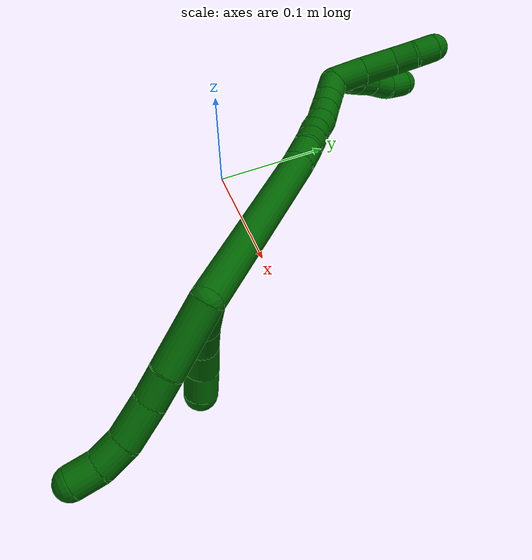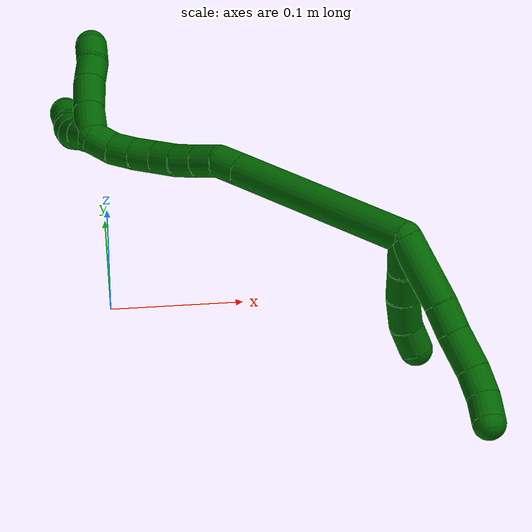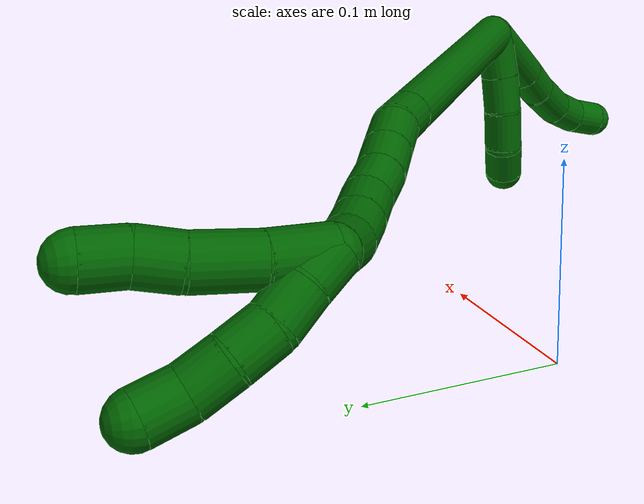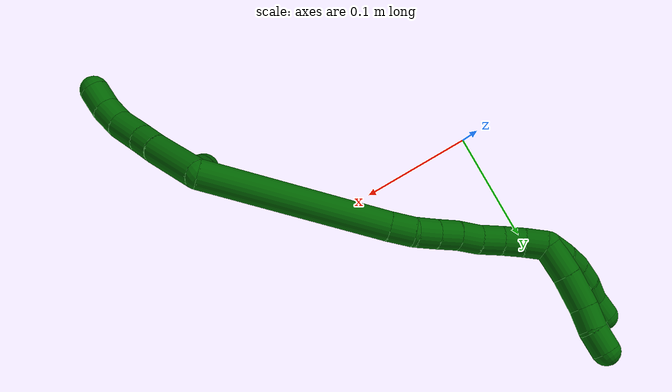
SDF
<sdf version="1.7">
 <world name="default">
  <model name="6">
   <static>0</static>
   <link name="6">
    <collision name="collision-cylinder-e_1_2_8">
     <pose>0.016891 0.004229 -0.020496 -2.93812 0.679052 -2.57887</pose>
     <geometry><cylinder><radius>0.0125</radius><length>0.053787</length></cylinder></geometry>
     <surface>
      <friction><ode><mu>1.16</mu><mu2>1.16</mu2><slip1>0</slip1><slip2>0</slip2></ode></friction>
      <contact><ode><kp>1e+06</kp><kd>1</kd><max_vel>0</max_vel><min_depth>0.001</min_depth></ode></contact>
     </surface>
    </collision>
    <visual name="visual-cylinder-e_1_2_8">
     <pose>0.016891 0.004229 -0.020496 -2.93812 0.679052 -2.57887</pose>
     <geometry><cylinder><radius>0.0125</radius><length>0.053787</length></cylinder></geometry>
     <material><ambient>0 0.392157 0.003922 1</ambient></material>
    </visual>
    <collision name="collision-cylinder-e_2_8_9">
     <pose>0.040942 0.011165 -0.049287 -2.82608 0.687177 -2.30485</pose>
     <geometry><cylinder><radius>0.0125</radius><length>0.022574</length></cylinder></geometry>
     <surface>
      <friction><ode><mu>1.16</mu><mu2>1.16</mu2><slip1>0</slip1><slip2>0</slip2></ode></friction>
      <contact><ode><kp>1e+06</kp><kd>1</kd><max_vel>0</max_vel><min_depth>0.001</min_depth></ode></contact>
     </surface>
    </collision>
    <visual name="visual-cylinder-e_2_8_9">
     <pose>0.040942 0.011165 -0.049287 -2.82608 0.687177 -2.30485</pose>
     <geometry><cylinder><radius>0.0125</radius><length>0.022574</length></cylinder></geometry>
     <material><ambient>0 0.392157 0.003922 1</ambient></material>
    </visual>
    <collision name="collision-cylinder-e_3_9_10">
     <pose>0.057041 0.01613 -0.069877 -2.96001 0.620805 -2.58851</pose>
     <geometry><cylinder><radius>0.0125</radius><length>0.030736</length></cylinder></geometry>
     <surface>
      <friction><ode><mu>1.16</mu><mu2>1.16</mu2><slip1>0</slip1><slip2>0</slip2></ode></friction>
      <contact><ode><kp>1e+06</kp><kd>1</kd><max_vel>0</max_vel><min_depth>0.001</min_depth></ode></contact>
     </surface>
    </collision>
    <visual name="visual-cylinder-e_3_9_10">
     <pose>0.057041 0.01613 -0.069877 -2.96001 0.620805 -2.58851</pose>
     <geometry><cylinder><radius>0.0125</radius><length>0.030736</length></cylinder></geometry>
     <material><ambient>0 0.392157 0.003922 1</ambient></material>
    </visual>
    <collision name="collision-cylinder-e_4_10_11">
     <pose>0.070167 0.020225 -0.092126 -2.95907 0.39216 -2.27812</pose>
     <geometry><cylinder><radius>0.0125</radius><length>0.021906</length></cylinder></geometry>
     <surface>
      <friction><ode><mu>1.16</mu><mu2>1.16</mu2><slip1>0</slip1><slip2>0</slip2></ode></friction>
      <contact><ode><kp>1e+06</kp><kd>1</kd><max_vel>0</max_vel><min_depth>0.001</min_depth></ode></contact>
     </surface>
    </collision>
    <visual name="visual-cylinder-e_4_10_11">
     <pose>0.070167 0.020225 -0.092126 -2.95907 0.39216 -2.27812</pose>
     <geometry><cylinder><radius>0.0125</radius><length>0.021906</length></cylinder></geometry>
     <material><ambient>0 0.392157 0.003922 1</ambient></material>
    </visual>
    <collision name="collision-cylinder-e_5_11_6">
     <pose>0.075637 0.023961 -0.112323 -2.95828 0.122615 -1.17765</pose>
     <geometry><cylinder><radius>0.0125</radius><length>0.020995</length></cylinder></geometry>
     <surface>
      <friction><ode><mu>1.16</mu><mu2>1.16</mu2><slip1>0</slip1><slip2>0</slip2></ode></friction>
      <contact><ode><kp>1e+06</kp><kd>1</kd><max_vel>0</max_vel><min_depth>0.001</min_depth></ode></contact>
     </surface>
    </collision>
    <visual name="visual-cylinder-e_5_11_6">
     <pose>0.075637 0.023961 -0.112323 -2.95828 0.122615 -1.17765</pose>
     <geometry><cylinder><radius>0.0125</radius><length>0.020995</length></cylinder></geometry>
     <material><ambient>0 0.392157 0.003922 1</ambient></material>
    </visual>
    <collision name="collision-cylinder-e_1_2_12">
     <pose>0.00959 0.009936 -0.002819 -1.84724 0.748324 -0.958338</pose>
     <geometry><cylinder><radius>0.0125</radius><length>0.028187</length></cylinder></geometry>
     <surface>
      <friction><ode><mu>1.16</mu><mu2>1.16</mu2><slip1>0</slip1><slip2>0</slip2></ode></friction>
      <contact><ode><kp>1e+06</kp><kd>1</kd><max_vel>0</max_vel><min_depth>0.001</min_depth></ode></contact>
     </surface>
    </collision>
    <visual name="visual-cylinder-e_1_2_12">
     <pose>0.00959 0.009936 -0.002819 -1.84724 0.748324 -0.958338</pose>
     <geometry><cylinder><radius>0.0125</radius><length>0.028187</length></cylinder></geometry>
     <material><ambient>0 0.392157 0.003922 1</ambient></material>
    </visual>
    <collision name="collision-cylinder-e_2_12_13">
     <pose>0.027411 0.028407 -0.006894 -1.71695 0.761974 -0.868606</pose>
     <geometry><cylinder><radius>0.0125</radius><length>0.023849</length></cylinder></geometry>
     <surface>
      <friction><ode><mu>1.16</mu><mu2>1.16</mu2><slip1>0</slip1><slip2>0</slip2></ode></friction>
      <contact><ode><kp>1e+06</kp><kd>1</kd><max_vel>0</max_vel><min_depth>0.001</min_depth></ode></contact>
     </surface>
    </collision>
    <visual name="visual-cylinder-e_2_12_13">
     <pose>0.027411 0.028407 -0.006894 -1.71695 0.761974 -0.868606</pose>
     <geometry><cylinder><radius>0.0125</radius><length>0.023849</length></cylinder></geometry>
     <material><ambient>0 0.392157 0.003922 1</ambient></material>
    </visual>
    <collision name="collision-cylinder-e_3_13_14">
     <pose>0.045827 0.044968 -0.009771 -1.77005 0.893585 -1.05942</pose>
     <geometry><cylinder><radius>0.0125</radius><length>0.026134</length></cylinder></geometry>
     <surface>
      <friction><ode><mu>1.16</mu><mu2>1.16</mu2><slip1>0</slip1><slip2>0</slip2></ode></friction>
      <contact><ode><kp>1e+06</kp><kd>1</kd><max_vel>0</max_vel><min_depth>0.001</min_depth></ode></contact>
     </surface>
    </collision>
    <visual name="visual-cylinder-e_3_13_14">
     <pose>0.045827 0.044968 -0.009771 -1.77005 0.893585 -1.05942</pose>
     <geometry><cylinder><radius>0.0125</radius><length>0.026134</length></cylinder></geometry>
     <material><ambient>0 0.392157 0.003922 1</ambient></material>
    </visual>
    <collision name="collision-cylinder-e_4_14_5">
     <pose>0.065538 0.05735 -0.014456 -2.18381 1.06115 -1.6927</pose>
     <geometry><cylinder><radius>0.0125</radius><length>0.02183</length></cylinder></geometry>
     <surface>
      <friction><ode><mu>1.16</mu><mu2>1.16</mu2><slip1>0</slip1><slip2>0</slip2></ode></friction>
      <contact><ode><kp>1e+06</kp><kd>1</kd><max_vel>0</max_vel><min_depth>0.001</min_depth></ode></contact>
     </surface>
    </collision>
    <visual name="visual-cylinder-e_4_14_5">
     <pose>0.065538 0.05735 -0.014456 -2.18381 1.06115 -1.6927</pose>
     <geometry><cylinder><radius>0.0125</radius><length>0.02183</length></cylinder></geometry>
     <material><ambient>0 0.392157 0.003922 1</ambient></material>
    </visual>
    <collision name="collision-cylinder-e_1_2_15">
     <pose>-0.022845 0.043762 0.061987 -0.614737 -0.292441 0.093428</pose>
     <geometry><cylinder><radius>0.0125</radius><length>0.158485</length></cylinder></geometry>
     <surface>
      <friction><ode><mu>1.16</mu><mu2>1.16</mu2><slip1>0</slip1><slip2>0</slip2></ode></friction>
      <contact><ode><kp>1e+06</kp><kd>1</kd><max_vel>0</max_vel><min_depth>0.001</min_depth></ode></contact>
     </surface>
    </collision>
    <visual name="visual-cylinder-e_1_2_15">
     <pose>-0.022845 0.043762 0.061987 -0.614737 -0.292441 0.093428</pose>
     <geometry><cylinder><radius>0.0125</radius><length>0.158485</length></cylinder></geometry>
     <material><ambient>0 0.392157 0.003922 1</ambient></material>
    </visual>
    <collision name="collision-cylinder-e_2_15_16">
     <pose>-0.049266 0.093423 0.132072 -0.629537 -0.342835 0.112612</pose>
     <geometry><cylinder><radius>0.0125</radius><length>0.021275</length></cylinder></geometry>
     <surface>
      <friction><ode><mu>1.16</mu><mu2>1.16</mu2><slip1>0</slip1><slip2>0</slip2></ode></friction>
      <contact><ode><kp>1e+06</kp><kd>1</kd><max_vel>0</max_vel><min_depth>0.001</min_depth></ode></contact>
     </surface>
    </collision>
    <visual name="visual-cylinder-e_2_15_16">
     <pose>-0.049266 0.093423 0.132072 -0.629537 -0.342835 0.112612</pose>
     <geometry><cylinder><radius>0.0125</radius><length>0.021275</length></cylinder></geometry>
     <material><ambient>0 0.392157 0.003922 1</ambient></material>
    </visual>
    <collision name="collision-cylinder-e_3_16_17">
     <pose>-0.054464 0.107145 0.146379 -0.899962 -0.161047 0.07792</pose>
     <geometry><cylinder><radius>0.0125</radius><length>0.020238</length></cylinder></geometry>
     <surface>
      <friction><ode><mu>1.16</mu><mu2>1.16</mu2><slip1>0</slip1><slip2>0</slip2></ode></friction>
      <contact><ode><kp>1e+06</kp><kd>1</kd><max_vel>0</max_vel><min_depth>0.001</min_depth></ode></contact>
     </surface>
    </collision>
    <visual name="visual-cylinder-e_3_16_17">
     <pose>-0.054464 0.107145 0.146379 -0.899962 -0.161047 0.07792</pose>
     <geometry><cylinder><radius>0.0125</radius><length>0.020238</length></cylinder></geometry>
     <material><ambient>0 0.392157 0.003922 1</ambient></material>
    </visual>
    <collision name="collision-cylinder-e_4_17_18">
     <pose>-0.058062 0.122679 0.158642 -0.905062 -0.198793 0.096893</pose>
     <geometry><cylinder><radius>0.0125</radius><length>0.02</length></cylinder></geometry>
     <surface>
      <friction><ode><mu>1.16</mu><mu2>1.16</mu2><slip1>0</slip1><slip2>0</slip2></ode></friction>
      <contact><ode><kp>1e+06</kp><kd>1</kd><max_vel>0</max_vel><min_depth>0.001</min_depth></ode></contact>
     </surface>
    </collision>
    <visual name="visual-cylinder-e_4_17_18">
     <pose>-0.058062 0.122679 0.158642 -0.905062 -0.198793 0.096893</pose>
     <geometry><cylinder><radius>0.0125</radius><length>0.02</length></cylinder></geometry>
     <material><ambient>0 0.392157 0.003922 1</ambient></material>
    </visual>
    <collision name="collision-cylinder-e_5_18_19">
     <pose>-0.061911 0.137295 0.171683 -0.779683 -0.188517 0.077647</pose>
     <geometry><cylinder><radius>0.0125</radius><length>0.020001</length></cylinder></geometry>
     <surface>
      <friction><ode><mu>1.16</mu><mu2>1.16</mu2><slip1>0</slip1><slip2>0</slip2></ode></friction>
      <contact><ode><kp>1e+06</kp><kd>1</kd><max_vel>0</max_vel><min_depth>0.001</min_depth></ode></contact>
     </surface>
    </collision>
    <visual name="visual-cylinder-e_5_18_19">
     <pose>-0.061911 0.137295 0.171683 -0.779683 -0.188517 0.077647</pose>
     <geometry><cylinder><radius>0.0125</radius><length>0.020001</length></cylinder></geometry>
     <material><ambient>0 0.392157 0.003922 1</ambient></material>
    </visual>
    <collision name="collision-cylinder-e_6_19_20">
     <pose>-0.067141 0.151225 0.184946 -0.841479 -0.342243 0.154345</pose>
     <geometry><cylinder><radius>0.0125</radius><length>0.02</length></cylinder></geometry>
     <surface>
      <friction><ode><mu>1.16</mu><mu2>1.16</mu2><slip1>0</slip1><slip2>0</slip2></ode></friction>
      <contact><ode><kp>1e+06</kp><kd>1</kd><max_vel>0</max_vel><min_depth>0.001</min_depth></ode></contact>
     </surface>
    </collision>
    <visual name="visual-cylinder-e_6_19_20">
     <pose>-0.067141 0.151225 0.184946 -0.841479 -0.342243 0.154345</pose>
     <geometry><cylinder><radius>0.0125</radius><length>0.02</length></cylinder></geometry>
     <material><ambient>0 0.392157 0.003922 1</ambient></material>
    </visual>
    <collision name="collision-cylinder-e_7_20_21">
     <pose>-0.074183 0.164789 0.197829 -0.780366 -0.37752 0.156811</pose>
     <geometry><cylinder><radius>0.0125</radius><length>0.02</length></cylinder></geometry>
     <surface>
      <friction><ode><mu>1.16</mu><mu2>1.16</mu2><slip1>0</slip1><slip2>0</slip2></ode></friction>
      <contact><ode><kp>1e+06</kp><kd>1</kd><max_vel>0</max_vel><min_depth>0.001</min_depth></ode></contact>
     </surface>
    </collision>
    <visual name="visual-cylinder-e_7_20_21">
     <pose>-0.074183 0.164789 0.197829 -0.780366 -0.37752 0.156811</pose>
     <geometry><cylinder><radius>0.0125</radius><length>0.02</length></cylinder></geometry>
     <material><ambient>0 0.392157 0.003922 1</ambient></material>
    </visual>
    <collision name="collision-cylinder-e_8_21_1">
     <pose>-0.083451 0.175784 0.211436 -0.566712 -0.592126 0.177178</pose>
     <geometry><cylinder><radius>0.0125</radius><length>0.02</length></cylinder></geometry>
     <surface>
      <friction><ode><mu>1.16</mu><mu2>1.16</mu2><slip1>0</slip1><slip2>0</slip2></ode></friction>
      <contact><ode><kp>1e+06</kp><kd>1</kd><max_vel>0</max_vel><min_depth>0.001</min_depth></ode></contact>
     </surface>
    </collision>
    <visual name="visual-cylinder-e_8_21_1">
     <pose>-0.083451 0.175784 0.211436 -0.566712 -0.592126 0.177178</pose>
     <geometry><cylinder><radius>0.0125</radius><length>0.02</length></cylinder></geometry>
     <material><ambient>0 0.392157 0.003922 1</ambient></material>
    </visual>
    <collision name="collision-cylinder-e_1_1_22">
     <pose>-0.087521 0.18575 0.226643 -0.5914 0.151653 -0.046279</pose>
     <geometry><cylinder><radius>0.0125</radius><length>0.02</length></cylinder></geometry>
     <surface>
      <friction><ode><mu>1.16</mu><mu2>1.16</mu2><slip1>0</slip1><slip2>0</slip2></ode></friction>
      <contact><ode><kp>1e+06</kp><kd>1</kd><max_vel>0</max_vel><min_depth>0.001</min_depth></ode></contact>
     </surface>
    </collision>
    <visual name="visual-cylinder-e_1_1_22">
     <pose>-0.087521 0.18575 0.226643 -0.5914 0.151653 -0.046279</pose>
     <geometry><cylinder><radius>0.0125</radius><length>0.02</length></cylinder></geometry>
     <material><ambient>0 0.392157 0.003922 1</ambient></material>
    </visual>
    <collision name="collision-cylinder-e_2_22_23">
     <pose>-0.083097 0.196964 0.242529 -0.638767 0.295678 -0.098421</pose>
     <geometry><cylinder><radius>0.0125</radius><length>0.02</length></cylinder></geometry>
     <surface>
      <friction><ode><mu>1.16</mu><mu2>1.16</mu2><slip1>0</slip1><slip2>0</slip2></ode></friction>
      <contact><ode><kp>1e+06</kp><kd>1</kd><max_vel>0</max_vel><min_depth>0.001</min_depth></ode></contact>
     </surface>
    </collision>
    <visual name="visual-cylinder-e_2_22_23">
     <pose>-0.083097 0.196964 0.242529 -0.638767 0.295678 -0.098421</pose>
     <geometry><cylinder><radius>0.0125</radius><length>0.02</length></cylinder></geometry>
     <material><ambient>0 0.392157 0.003922 1</ambient></material>
    </visual>
    <collision name="collision-cylinder-e_3_23_24">
     <pose>-0.076876 0.206125 0.25899 -0.375077 0.337063 -0.064554</pose>
     <geometry><cylinder><radius>0.0125</radius><length>0.02</length></cylinder></geometry>
     <surface>
      <friction><ode><mu>1.16</mu><mu2>1.16</mu2><slip1>0</slip1><slip2>0</slip2></ode></friction>
      <contact><ode><kp>1e+06</kp><kd>1</kd><max_vel>0</max_vel><min_depth>0.001</min_depth></ode></contact>
     </surface>
    </collision>
    <visual name="visual-cylinder-e_3_23_24">
     <pose>-0.076876 0.206125 0.25899 -0.375077 0.337063 -0.064554</pose>
     <geometry><cylinder><radius>0.0125</radius><length>0.02</length></cylinder></geometry>
     <material><ambient>0 0.392157 0.003922 1</ambient></material>
    </visual>
    <collision name="collision-cylinder-e_4_24_25">
     <pose>-0.068882 0.212276 0.276184 -0.309868 0.487779 -0.077692</pose>
     <geometry><cylinder><radius>0.0125</radius><length>0.02</length></cylinder></geometry>
     <surface>
      <friction><ode><mu>1.16</mu><mu2>1.16</mu2><slip1>0</slip1><slip2>0</slip2></ode></friction>
      <contact><ode><kp>1e+06</kp><kd>1</kd><max_vel>0</max_vel><min_depth>0.001</min_depth></ode></contact>
     </surface>
    </collision>
    <visual name="visual-cylinder-e_4_24_25">
     <pose>-0.068882 0.212276 0.276184 -0.309868 0.487779 -0.077692</pose>
     <geometry><cylinder><radius>0.0125</radius><length>0.02</length></cylinder></geometry>
     <material><ambient>0 0.392157 0.003922 1</ambient></material>
    </visual>
    <collision name="collision-cylinder-e_5_25_4">
     <pose>-0.062398 0.216861 0.294251 -0.193463 0.180688 -0.01758</pose>
     <geometry><cylinder><radius>0.0125</radius><length>0.02</length></cylinder></geometry>
     <surface>
      <friction><ode><mu>1.16</mu><mu2>1.16</mu2><slip1>0</slip1><slip2>0</slip2></ode></friction>
      <contact><ode><kp>1e+06</kp><kd>1</kd><max_vel>0</max_vel><min_depth>0.001</min_depth></ode></contact>
     </surface>
    </collision>
    <visual name="visual-cylinder-e_5_25_4">
     <pose>-0.062398 0.216861 0.294251 -0.193463 0.180688 -0.01758</pose>
     <geometry><cylinder><radius>0.0125</radius><length>0.02</length></cylinder></geometry>
     <material><ambient>0 0.392157 0.003922 1</ambient></material>
    </visual>
    <collision name="collision-cylinder-e_1_1_26">
     <pose>-0.088508 0.179125 0.233084 0.075906 0.03562 0.001353</pose>
     <geometry><cylinder><radius>0.0125</radius><length>0.029398</length></cylinder></geometry>
     <surface>
      <friction><ode><mu>1.16</mu><mu2>1.16</mu2><slip1>0</slip1><slip2>0</slip2></ode></friction>
      <contact><ode><kp>1e+06</kp><kd>1</kd><max_vel>0</max_vel><min_depth>0.001</min_depth></ode></contact>
     </surface>
    </collision>
    <visual name="visual-cylinder-e_1_1_26">
     <pose>-0.088508 0.179125 0.233084 0.075906 0.03562 0.001353</pose>
     <geometry><cylinder><radius>0.0125</radius><length>0.029398</length></cylinder></geometry>
     <material><ambient>0 0.392157 0.003922 1</ambient></material>
    </visual>
    <collision name="collision-cylinder-e_2_26_27">
     <pose>-0.086947 0.175194 0.262633 0.186779 0.068348 0.006404</pose>
     <geometry><cylinder><radius>0.0125</radius><length>0.030403</length></cylinder></geometry>
     <surface>
      <friction><ode><mu>1.16</mu><mu2>1.16</mu2><slip1>0</slip1><slip2>0</slip2></ode></friction>
      <contact><ode><kp>1e+06</kp><kd>1</kd><max_vel>0</max_vel><min_depth>0.001</min_depth></ode></contact>
     </surface>
    </collision>
    <visual name="visual-cylinder-e_2_26_27">
     <pose>-0.086947 0.175194 0.262633 0.186779 0.068348 0.006404</pose>
     <geometry><cylinder><radius>0.0125</radius><length>0.030403</length></cylinder></geometry>
     <material><ambient>0 0.392157 0.003922 1</ambient></material>
    </visual>
    <collision name="collision-cylinder-e_3_27_28">
     <pose>-0.085349 0.168874 0.286931 0.357002 0.055722 0.010056</pose>
     <geometry><cylinder><radius>0.0125</radius><length>0.020086</length></cylinder></geometry>
     <surface>
      <friction><ode><mu>1.16</mu><mu2>1.16</mu2><slip1>0</slip1><slip2>0</slip2></ode></friction>
      <contact><ode><kp>1e+06</kp><kd>1</kd><max_vel>0</max_vel><min_depth>0.001</min_depth></ode></contact>
     </surface>
    </collision>
    <visual name="visual-cylinder-e_3_27_28">
     <pose>-0.085349 0.168874 0.286931 0.357002 0.055722 0.010056</pose>
     <geometry><cylinder><radius>0.0125</radius><length>0.020086</length></cylinder></geometry>
     <material><ambient>0 0.392157 0.003922 1</ambient></material>
    </visual>
    <collision name="collision-cylinder-e_4_28_3">
     <pose>-0.084381 0.164224 0.306308 0.114285 0.0407 0.002329</pose>
     <geometry><cylinder><radius>0.0125</radius><length>0.020113</length></cylinder></geometry>
     <surface>
      <friction><ode><mu>1.16</mu><mu2>1.16</mu2><slip1>0</slip1><slip2>0</slip2></ode></friction>
      <contact><ode><kp>1e+06</kp><kd>1</kd><max_vel>0</max_vel><min_depth>0.001</min_depth></ode></contact>
     </surface>
    </collision>
    <visual name="visual-cylinder-e_4_28_3">
     <pose>-0.084381 0.164224 0.306308 0.114285 0.0407 0.002329</pose>
     <geometry><cylinder><radius>0.0125</radius><length>0.020113</length></cylinder></geometry>
     <material><ambient>0 0.392157 0.003922 1</ambient></material>
    </visual>
    <collision name="collision-sphere-3">
     <pose>-0.083972 0.163078 0.316291 0 -0 0</pose>
     <geometry><sphere><radius>0.0125</radius></sphere></geometry>
     <surface>
      <friction><ode><mu>1.16</mu><mu2>1.16</mu2><slip1>0</slip1><slip2>0</slip2></ode></friction>
      <contact><ode><kp>1e+06</kp><kd>1</kd><max_vel>0</max_vel><min_depth>0.001</min_depth></ode></contact>
     </surface>
    </collision>
    <visual name="visual-sphere-3">
     <pose>-0.083972 0.163078 0.316291 0 -0 0</pose>
     <geometry><sphere><radius>0.0125</radius></sphere></geometry>
     <material><ambient>0 0.392157 0.003922 1</ambient></material>
    </visual>
    <collision name="collision-sphere-28">
     <pose>-0.08479 0.16537 0.296326 0 -0 0</pose>
     <geometry><sphere><radius>0.0125</radius></sphere></geometry>
     <surface>
      <friction><ode><mu>1.16</mu><mu2>1.16</mu2><slip1>0</slip1><slip2>0</slip2></ode></friction>
      <contact><ode><kp>1e+06</kp><kd>1</kd><max_vel>0</max_vel><min_depth>0.001</min_depth></ode></contact>
     </surface>
    </collision>
    <visual name="visual-sphere-28">
     <pose>-0.08479 0.16537 0.296326 0 -0 0</pose>
     <geometry><sphere><radius>0.0125</radius></sphere></geometry>
     <material><ambient>0 0.392157 0.003922 1</ambient></material>
    </visual>
    <collision name="collision-sphere-27">
     <pose>-0.085909 0.172378 0.277535 0 -0 0</pose>
     <geometry><sphere><radius>0.0125</radius></sphere></geometry>
     <surface>
      <friction><ode><mu>1.16</mu><mu2>1.16</mu2><slip1>0</slip1><slip2>0</slip2></ode></friction>
      <contact><ode><kp>1e+06</kp><kd>1</kd><max_vel>0</max_vel><min_depth>0.001</min_depth></ode></contact>
     </surface>
    </collision>
    <visual name="visual-sphere-27">
     <pose>-0.085909 0.172378 0.277535 0 -0 0</pose>
     <geometry><sphere><radius>0.0125</radius></sphere></geometry>
     <material><ambient>0 0.392157 0.003922 1</ambient></material>
    </visual>
    <collision name="collision-sphere-26">
     <pose>-0.087985 0.178011 0.247731 0 -0 0</pose>
     <geometry><sphere><radius>0.0125</radius></sphere></geometry>
     <surface>
      <friction><ode><mu>1.16</mu><mu2>1.16</mu2><slip1>0</slip1><slip2>0</slip2></ode></friction>
      <contact><ode><kp>1e+06</kp><kd>1</kd><max_vel>0</max_vel><min_depth>0.001</min_depth></ode></contact>
     </surface>
    </collision>
    <visual name="visual-sphere-26">
     <pose>-0.087985 0.178011 0.247731 0 -0 0</pose>
     <geometry><sphere><radius>0.0125</radius></sphere></geometry>
     <material><ambient>0 0.392157 0.003922 1</ambient></material>
    </visual>
    <collision name="collision-sphere-4">
     <pose>-0.060601 0.218752 0.303905 0 -0 0</pose>
     <geometry><sphere><radius>0.0125</radius></sphere></geometry>
     <surface>
      <friction><ode><mu>1.16</mu><mu2>1.16</mu2><slip1>0</slip1><slip2>0</slip2></ode></friction>
      <contact><ode><kp>1e+06</kp><kd>1</kd><max_vel>0</max_vel><min_depth>0.001</min_depth></ode></contact>
     </surface>
    </collision>
    <visual name="visual-sphere-4">
     <pose>-0.060601 0.218752 0.303905 0 -0 0</pose>
     <geometry><sphere><radius>0.0125</radius></sphere></geometry>
     <material><ambient>0 0.392157 0.003922 1</ambient></material>
    </visual>
    <collision name="collision-sphere-25">
     <pose>-0.064195 0.21497 0.284597 0 -0 0</pose>
     <geometry><sphere><radius>0.0125</radius></sphere></geometry>
     <surface>
      <friction><ode><mu>1.16</mu><mu2>1.16</mu2><slip1>0</slip1><slip2>0</slip2></ode></friction>
      <contact><ode><kp>1e+06</kp><kd>1</kd><max_vel>0</max_vel><min_depth>0.001</min_depth></ode></contact>
     </surface>
    </collision>
    <visual name="visual-sphere-25">
     <pose>-0.064195 0.21497 0.284597 0 -0 0</pose>
     <geometry><sphere><radius>0.0125</radius></sphere></geometry>
     <material><ambient>0 0.392157 0.003922 1</ambient></material>
    </visual>
    <collision name="collision-sphere-24">
     <pose>-0.073568 0.209582 0.267771 0 -0 0</pose>
     <geometry><sphere><radius>0.0125</radius></sphere></geometry>
     <surface>
      <friction><ode><mu>1.16</mu><mu2>1.16</mu2><slip1>0</slip1><slip2>0</slip2></ode></friction>
      <contact><ode><kp>1e+06</kp><kd>1</kd><max_vel>0</max_vel><min_depth>0.001</min_depth></ode></contact>
     </surface>
    </collision>
    <visual name="visual-sphere-24">
     <pose>-0.073568 0.209582 0.267771 0 -0 0</pose>
     <geometry><sphere><radius>0.0125</radius></sphere></geometry>
     <material><ambient>0 0.392157 0.003922 1</ambient></material>
    </visual>
    <collision name="collision-sphere-23">
     <pose>-0.080183 0.202668 0.250209 0 -0 0</pose>
     <geometry><sphere><radius>0.0125</radius></sphere></geometry>
     <surface>
      <friction><ode><mu>1.16</mu><mu2>1.16</mu2><slip1>0</slip1><slip2>0</slip2></ode></friction>
      <contact><ode><kp>1e+06</kp><kd>1</kd><max_vel>0</max_vel><min_depth>0.001</min_depth></ode></contact>
     </surface>
    </collision>
    <visual name="visual-sphere-23">
     <pose>-0.080183 0.202668 0.250209 0 -0 0</pose>
     <geometry><sphere><radius>0.0125</radius></sphere></geometry>
     <material><ambient>0 0.392157 0.003922 1</ambient></material>
    </visual>
    <collision name="collision-sphere-22">
     <pose>-0.086011 0.191261 0.234849 0 -0 0</pose>
     <geometry><sphere><radius>0.0125</radius></sphere></geometry>
     <surface>
      <friction><ode><mu>1.16</mu><mu2>1.16</mu2><slip1>0</slip1><slip2>0</slip2></ode></friction>
      <contact><ode><kp>1e+06</kp><kd>1</kd><max_vel>0</max_vel><min_depth>0.001</min_depth></ode></contact>
     </surface>
    </collision>
    <visual name="visual-sphere-22">
     <pose>-0.086011 0.191261 0.234849 0 -0 0</pose>
     <geometry><sphere><radius>0.0125</radius></sphere></geometry>
     <material><ambient>0 0.392157 0.003922 1</ambient></material>
    </visual>
    <collision name="collision-sphere-1">
     <pose>-0.089032 0.180239 0.218436 0 -0 0</pose>
     <geometry><sphere><radius>0.0125</radius></sphere></geometry>
     <surface>
      <friction><ode><mu>1.16</mu><mu2>1.16</mu2><slip1>0</slip1><slip2>0</slip2></ode></friction>
      <contact><ode><kp>1e+06</kp><kd>1</kd><max_vel>0</max_vel><min_depth>0.001</min_depth></ode></contact>
     </surface>
    </collision>
    <visual name="visual-sphere-1">
     <pose>-0.089032 0.180239 0.218436 0 -0 0</pose>
     <geometry><sphere><radius>0.0125</radius></sphere></geometry>
     <material><ambient>0 0.392157 0.003922 1</ambient></material>
    </visual>
    <collision name="collision-sphere-21">
     <pose>-0.077869 0.171329 0.204435 0 -0 0</pose>
     <geometry><sphere><radius>0.0125</radius></sphere></geometry>
     <surface>
      <friction><ode><mu>1.16</mu><mu2>1.16</mu2><slip1>0</slip1><slip2>0</slip2></ode></friction>
      <contact><ode><kp>1e+06</kp><kd>1</kd><max_vel>0</max_vel><min_depth>0.001</min_depth></ode></contact>
     </surface>
    </collision>
    <visual name="visual-sphere-21">
     <pose>-0.077869 0.171329 0.204435 0 -0 0</pose>
     <geometry><sphere><radius>0.0125</radius></sphere></geometry>
     <material><ambient>0 0.392157 0.003922 1</ambient></material>
    </visual>
    <collision name="collision-sphere-6">
     <pose>0.076921 0.02586 -0.122568 0 -0 0</pose>
     <geometry><sphere><radius>0.0125</radius></sphere></geometry>
     <surface>
      <friction><ode><mu>1.16</mu><mu2>1.16</mu2><slip1>0</slip1><slip2>0</slip2></ode></friction>
      <contact><ode><kp>1e+06</kp><kd>1</kd><max_vel>0</max_vel><min_depth>0.001</min_depth></ode></contact>
     </surface>
    </collision>
    <visual name="visual-sphere-6">
     <pose>0.076921 0.02586 -0.122568 0 -0 0</pose>
     <geometry><sphere><radius>0.0125</radius></sphere></geometry>
     <material><ambient>0 0.392157 0.003922 1</ambient></material>
    </visual>
    <collision name="collision-sphere-11">
     <pose>0.074353 0.022062 -0.102079 0 -0 0</pose>
     <geometry><sphere><radius>0.0125</radius></sphere></geometry>
     <surface>
      <friction><ode><mu>1.16</mu><mu2>1.16</mu2><slip1>0</slip1><slip2>0</slip2></ode></friction>
      <contact><ode><kp>1e+06</kp><kd>1</kd><max_vel>0</max_vel><min_depth>0.001</min_depth></ode></contact>
     </surface>
    </collision>
    <visual name="visual-sphere-11">
     <pose>0.074353 0.022062 -0.102079 0 -0 0</pose>
     <geometry><sphere><radius>0.0125</radius></sphere></geometry>
     <material><ambient>0 0.392157 0.003922 1</ambient></material>
    </visual>
    <collision name="collision-sphere-10">
     <pose>0.065981 0.018387 -0.082172 0 -0 0</pose>
     <geometry><sphere><radius>0.0125</radius></sphere></geometry>
     <surface>
      <friction><ode><mu>1.16</mu><mu2>1.16</mu2><slip1>0</slip1><slip2>0</slip2></ode></friction>
      <contact><ode><kp>1e+06</kp><kd>1</kd><max_vel>0</max_vel><min_depth>0.001</min_depth></ode></contact>
     </surface>
    </collision>
    <visual name="visual-sphere-10">
     <pose>0.065981 0.018387 -0.082172 0 -0 0</pose>
     <geometry><sphere><radius>0.0125</radius></sphere></geometry>
     <material><ambient>0 0.392157 0.003922 1</ambient></material>
    </visual>
    <collision name="collision-sphere-9">
     <pose>0.048102 0.013873 -0.057582 0 -0 0</pose>
     <geometry><sphere><radius>0.0125</radius></sphere></geometry>
     <surface>
      <friction><ode><mu>1.16</mu><mu2>1.16</mu2><slip1>0</slip1><slip2>0</slip2></ode></friction>
      <contact><ode><kp>1e+06</kp><kd>1</kd><max_vel>0</max_vel><min_depth>0.001</min_depth></ode></contact>
     </surface>
    </collision>
    <visual name="visual-sphere-9">
     <pose>0.048102 0.013873 -0.057582 0 -0 0</pose>
     <geometry><sphere><radius>0.0125</radius></sphere></geometry>
     <material><ambient>0 0.392157 0.003922 1</ambient></material>
    </visual>
    <collision name="collision-sphere-2">
     <geometry><sphere><radius>0.0125</radius></sphere></geometry>
     <surface>
      <friction><ode><mu>1.16</mu><mu2>1.16</mu2><slip1>0</slip1><slip2>0</slip2></ode></friction>
      <contact><ode><kp>1e+06</kp><kd>1</kd><max_vel>0</max_vel><min_depth>0.001</min_depth></ode></contact>
     </surface>
    </collision>
    <visual name="visual-sphere-2">
     <geometry><sphere><radius>0.0125</radius></sphere></geometry>
     <material><ambient>0 0.392157 0.003922 1</ambient></material>
    </visual>
    <collision name="collision-sphere-19">
     <pose>-0.063785 0.144201 0.178668 0 -0 0</pose>
     <geometry><sphere><radius>0.0125</radius></sphere></geometry>
     <surface>
      <friction><ode><mu>1.16</mu><mu2>1.16</mu2><slip1>0</slip1><slip2>0</slip2></ode></friction>
      <contact><ode><kp>1e+06</kp><kd>1</kd><max_vel>0</max_vel><min_depth>0.001</min_depth></ode></contact>
     </surface>
    </collision>
    <visual name="visual-sphere-19">
     <pose>-0.063785 0.144201 0.178668 0 -0 0</pose>
     <geometry><sphere><radius>0.0125</radius></sphere></geometry>
     <material><ambient>0 0.392157 0.003922 1</ambient></material>
    </visual>
    <collision name="collision-sphere-8">
     <pose>0.033781 0.008458 -0.040992 0 -0 0</pose>
     <geometry><sphere><radius>0.0125</radius></sphere></geometry>
     <surface>
      <friction><ode><mu>1.16</mu><mu2>1.16</mu2><slip1>0</slip1><slip2>0</slip2></ode></friction>
      <contact><ode><kp>1e+06</kp><kd>1</kd><max_vel>0</max_vel><min_depth>0.001</min_depth></ode></contact>
     </surface>
    </collision>
    <visual name="visual-sphere-8">
     <pose>0.033781 0.008458 -0.040992 0 -0 0</pose>
     <geometry><sphere><radius>0.0125</radius></sphere></geometry>
     <material><ambient>0 0.392157 0.003922 1</ambient></material>
    </visual>
    <collision name="collision-sphere-12">
     <pose>0.019179 0.019872 -0.005638 0 -0 0</pose>
     <geometry><sphere><radius>0.0125</radius></sphere></geometry>
     <surface>
      <friction><ode><mu>1.16</mu><mu2>1.16</mu2><slip1>0</slip1><slip2>0</slip2></ode></friction>
      <contact><ode><kp>1e+06</kp><kd>1</kd><max_vel>0</max_vel><min_depth>0.001</min_depth></ode></contact>
     </surface>
    </collision>
    <visual name="visual-sphere-12">
     <pose>0.019179 0.019872 -0.005638 0 -0 0</pose>
     <geometry><sphere><radius>0.0125</radius></sphere></geometry>
     <material><ambient>0 0.392157 0.003922 1</ambient></material>
    </visual>
    <collision name="collision-sphere-13">
     <pose>0.035643 0.036942 -0.008151 0 -0 0</pose>
     <geometry><sphere><radius>0.0125</radius></sphere></geometry>
     <surface>
      <friction><ode><mu>1.16</mu><mu2>1.16</mu2><slip1>0</slip1><slip2>0</slip2></ode></friction>
      <contact><ode><kp>1e+06</kp><kd>1</kd><max_vel>0</max_vel><min_depth>0.001</min_depth></ode></contact>
     </surface>
    </collision>
    <visual name="visual-sphere-13">
     <pose>0.035643 0.036942 -0.008151 0 -0 0</pose>
     <geometry><sphere><radius>0.0125</radius></sphere></geometry>
     <material><ambient>0 0.392157 0.003922 1</ambient></material>
    </visual>
    <collision name="collision-sphere-14">
     <pose>0.05601 0.052994 -0.011392 0 -0 0</pose>
     <geometry><sphere><radius>0.0125</radius></sphere></geometry>
     <surface>
      <friction><ode><mu>1.16</mu><mu2>1.16</mu2><slip1>0</slip1><slip2>0</slip2></ode></friction>
      <contact><ode><kp>1e+06</kp><kd>1</kd><max_vel>0</max_vel><min_depth>0.001</min_depth></ode></contact>
     </surface>
    </collision>
    <visual name="visual-sphere-14">
     <pose>0.05601 0.052994 -0.011392 0 -0 0</pose>
     <geometry><sphere><radius>0.0125</radius></sphere></geometry>
     <material><ambient>0 0.392157 0.003922 1</ambient></material>
    </visual>
    <collision name="collision-sphere-5">
     <pose>0.075066 0.061705 -0.01752 0 -0 0</pose>
     <geometry><sphere><radius>0.0125</radius></sphere></geometry>
     <surface>
      <friction><ode><mu>1.16</mu><mu2>1.16</mu2><slip1>0</slip1><slip2>0</slip2></ode></friction>
      <contact><ode><kp>1e+06</kp><kd>1</kd><max_vel>0</max_vel><min_depth>0.001</min_depth></ode></contact>
     </surface>
    </collision>
    <visual name="visual-sphere-5">
     <pose>0.075066 0.061705 -0.01752 0 -0 0</pose>
     <geometry><sphere><radius>0.0125</radius></sphere></geometry>
     <material><ambient>0 0.392157 0.003922 1</ambient></material>
    </visual>
    <collision name="collision-sphere-15">
     <pose>-0.04569 0.087525 0.123974 0 -0 0</pose>
     <geometry><sphere><radius>0.0125</radius></sphere></geometry>
     <surface>
      <friction><ode><mu>1.16</mu><mu2>1.16</mu2><slip1>0</slip1><slip2>0</slip2></ode></friction>
      <contact><ode><kp>1e+06</kp><kd>1</kd><max_vel>0</max_vel><min_depth>0.001</min_depth></ode></contact>
     </surface>
    </collision>
    <visual name="visual-sphere-15">
     <pose>-0.04569 0.087525 0.123974 0 -0 0</pose>
     <geometry><sphere><radius>0.0125</radius></sphere></geometry>
     <material><ambient>0 0.392157 0.003922 1</ambient></material>
    </visual>
    <collision name="collision-sphere-16">
     <pose>-0.052842 0.099322 0.14017 0 -0 0</pose>
     <geometry><sphere><radius>0.0125</radius></sphere></geometry>
     <surface>
      <friction><ode><mu>1.16</mu><mu2>1.16</mu2><slip1>0</slip1><slip2>0</slip2></ode></friction>
      <contact><ode><kp>1e+06</kp><kd>1</kd><max_vel>0</max_vel><min_depth>0.001</min_depth></ode></contact>
     </surface>
    </collision>
    <visual name="visual-sphere-16">
     <pose>-0.052842 0.099322 0.14017 0 -0 0</pose>
     <geometry><sphere><radius>0.0125</radius></sphere></geometry>
     <material><ambient>0 0.392157 0.003922 1</ambient></material>
    </visual>
    <collision name="collision-sphere-17">
     <pose>-0.056087 0.114969 0.152588 0 -0 0</pose>
     <geometry><sphere><radius>0.0125</radius></sphere></geometry>
     <surface>
      <friction><ode><mu>1.16</mu><mu2>1.16</mu2><slip1>0</slip1><slip2>0</slip2></ode></friction>
      <contact><ode><kp>1e+06</kp><kd>1</kd><max_vel>0</max_vel><min_depth>0.001</min_depth></ode></contact>
     </surface>
    </collision>
    <visual name="visual-sphere-17">
     <pose>-0.056087 0.114969 0.152588 0 -0 0</pose>
     <geometry><sphere><radius>0.0125</radius></sphere></geometry>
     <material><ambient>0 0.392157 0.003922 1</ambient></material>
    </visual>
    <collision name="collision-sphere-18">
     <pose>-0.060037 0.130389 0.164697 0 -0 0</pose>
     <geometry><sphere><radius>0.0125</radius></sphere></geometry>
     <surface>
      <friction><ode><mu>1.16</mu><mu2>1.16</mu2><slip1>0</slip1><slip2>0</slip2></ode></friction>
      <contact><ode><kp>1e+06</kp><kd>1</kd><max_vel>0</max_vel><min_depth>0.001</min_depth></ode></contact>
     </surface>
    </collision>
    <visual name="visual-sphere-18">
     <pose>-0.060037 0.130389 0.164697 0 -0 0</pose>
     <geometry><sphere><radius>0.0125</radius></sphere></geometry>
     <material><ambient>0 0.392157 0.003922 1</ambient></material>
    </visual>
    <collision name="collision-sphere-20">
     <pose>-0.070497 0.158249 0.191223 0 -0 0</pose>
     <geometry><sphere><radius>0.0125</radius></sphere></geometry>
     <surface>
      <friction><ode><mu>1.16</mu><mu2>1.16</mu2><slip1>0</slip1><slip2>0</slip2></ode></friction>
      <contact><ode><kp>1e+06</kp><kd>1</kd><max_vel>0</max_vel><min_depth>0.001</min_depth></ode></contact>
     </surface>
    </collision>
    <visual name="visual-sphere-20">
     <pose>-0.070497 0.158249 0.191223 0 -0 0</pose>
     <geometry><sphere><radius>0.0125</radius></sphere></geometry>
     <material><ambient>0 0.392157 0.003922 1</ambient></material>
    </visual>
    <inertial>
     <pose>-0.024847 0.092107 0.103022 0 -0 0</pose>
     <mass>0.75</mass>
     <inertia>
      <ixx>0.000359</ixx>
      <ixy>0</ixy>
      <ixz>0</ixz>
      <iyy>0.000364</iyy>
      <iyz>0</iyz>
      <izz>-0.000106</izz>
     </inertia>
    </inertial>
   </link>
   <pose>0.211162 -0.08072 0.130534 -1.54571 0.811391 0.142306</pose>
  </model>
 </world>
</sdf>
